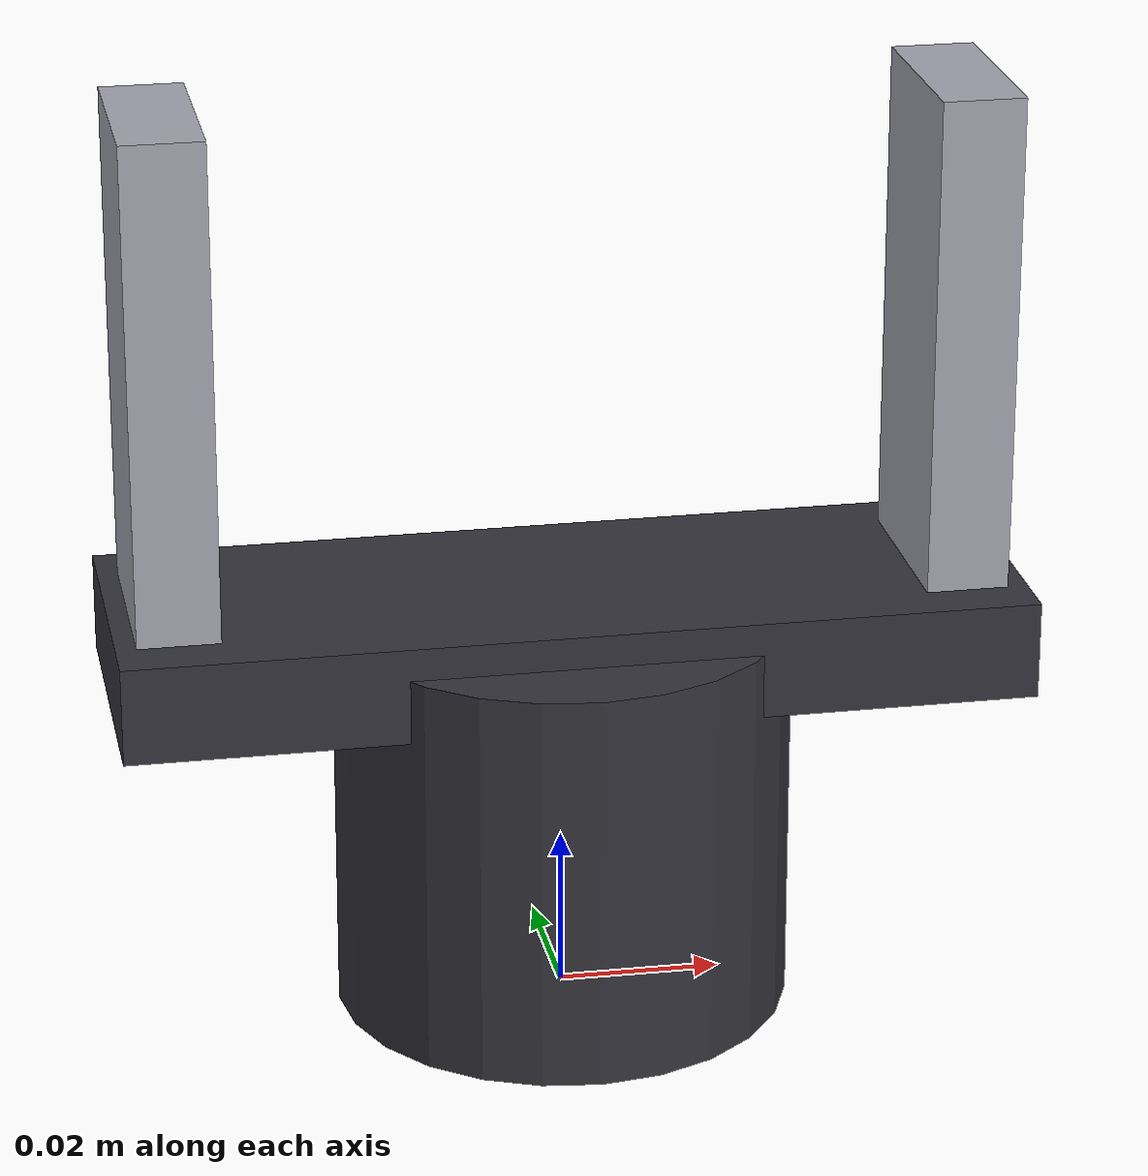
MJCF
<mujoco model="cr7_parallel_gripper">
  <compiler angle="radian"/>
  <worldbody>
    <body name="palm">
      <!-- Visualization proxy: 85 mm maximum gap, not a detailed Robotiq model. -->
      <geom name="palm_geom" type="cylinder" pos="0 0 0.025" size="0.028 0.025"
            rgba="0.2 0.2 0.23 1" contype="0" conaffinity="0"/>
      <geom name="finger_rail" type="box" pos="0 0 0.048" size="0.055 0.018 0.006"
            rgba="0.2 0.2 0.23 1" contype="0" conaffinity="0"/>
      <body name="left_finger" pos="0.0475 0 0.05">
        <joint name="left_slide" type="slide" axis="-1 0 0" limited="true"
               range="0 0.0425" damping="1"/>
        <geom type="box" pos="0 0 0.0325" size="0.005 0.012 0.0325"
              rgba="0.65 0.65 0.7 1" contype="0" conaffinity="0"/>
      </body>
      <body name="right_finger" pos="-0.0475 0 0.05">
        <joint name="right_slide" type="slide" axis="1 0 0" limited="true"
               range="0 0.0425" damping="1"/>
        <geom type="box" pos="0 0 0.0325" size="0.005 0.012 0.0325"
              rgba="0.65 0.65 0.7 1" contype="0" conaffinity="0"/>
      </body>
    </body>
  </worldbody>
  <equality>
    <joint joint1="right_slide" joint2="left_slide" polycoef="0 1 0 0 0"/>
  </equality>
  <actuator>
    <position name="closure" joint="left_slide" kp="200" kv="5"
              ctrllimited="true" ctrlrange="0 0.0425" forcelimited="true" forcerange="-10 10"/>
  </actuator>
</mujoco>
